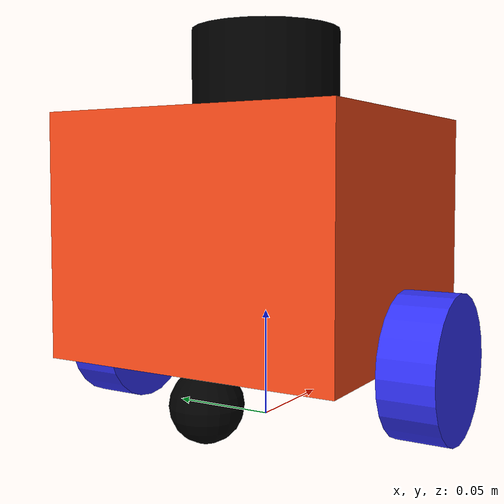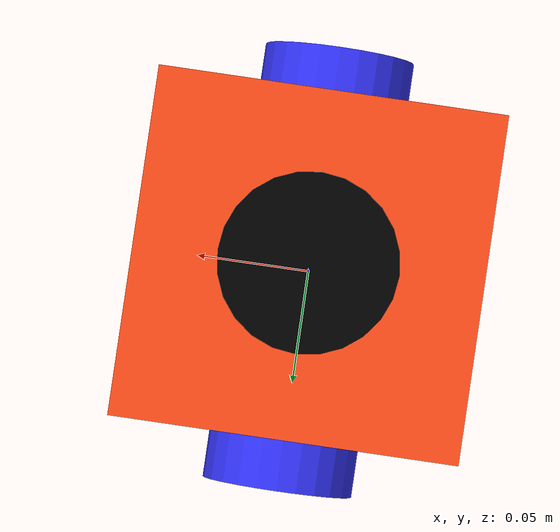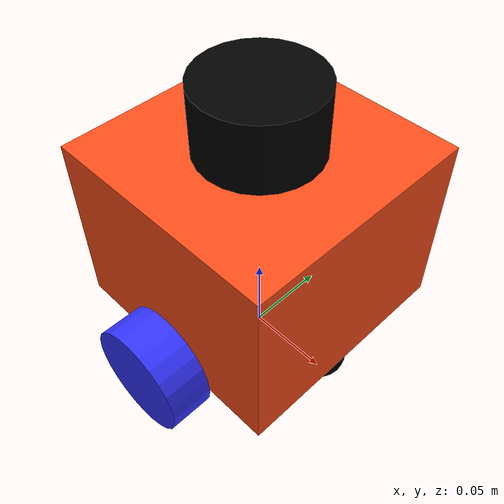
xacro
<?xml version="1.0"?>
<robot xmlns:xacro="http://www.ros.org/wiki/xacro"  name="robot">

    <xacro:arg name="is_sim" default="true"/>

    <xacro:include filename="dolly_core.xacro" />
    <xacro:include filename="dolly_gazebo.xacro" />
    <xacro:include filename="dolly_ros2_control.xacro" />
    <xacro:include filename="dolly_lidar.xacro" />
</robot>

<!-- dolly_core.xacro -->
<robot xmlns:xacro="http://www.ros.org/wiki/xacro" >

    <xacro:include filename="Inertial_macros.xacro"/>
    <xacro:property name="chassis_length" value=".14"/>
    <xacro:property name="chassis_width" value=".14"/>
    <xacro:property name="chassis_height" value="0.11"/>
    <xacro:property name="chassis_mass" value="0.2"/>

    <xacro:property name="wheel_radius" value="0.0325"/>
    <xacro:property name="wheel_thickness" value="0.025"/>
    <xacro:property name="wheel_mass" value="0.8"/>

    <xacro:property name="caster_radius" value="0.01625"/>
    <xacro:property name="caster_mass" value="0.0025"/>

    <material name="white">
        <color rgba="1 1 1 1" />
    </material>

    <material name="orange">
        <color rgba="1 0.3 0.1 1"/>
    </material>

    <material name="blue">
        <color rgba="0.2 0.2 1 1"/>
    </material>

    <material name="black">
        <color rgba="0 0 0 1"/>
    </material>

    <material name="red">
        <color rgba="1 0 0 1"/>
    </material>

 <!-- BASE LINK -->

    <link name="base_link"/>

 <!-- CHASSIS LINK -->

    <joint name="chassis_joint" type="fixed">
        <parent link="base_link"/>
        <child link="chassis"/>
        <origin xyz="0 0 ${wheel_radius}"/>
    </joint>

    <link name="chassis">
        <visual>
            <origin xyz="0 0 ${chassis_height/2}"/>
            <geometry>
                <box size="${chassis_length} ${chassis_width} ${chassis_height}"/>
            </geometry>
            <material name="orange"/>
        </visual>
        <collision>
            <origin xyz="0 0 ${chassis_height/2}"/>
            <geometry>
                <box size="${chassis_length} ${chassis_width} ${chassis_height}"/>
            </geometry>
        </collision>
        <xacro:inertial_box mass="0.5" x="${chassis_length}" y="${chassis_width}" z="${chassis_height}">
            <origin xyz="${chassis_length/2} 0 ${chassis_height/2}" rpy="0 0 0"/>
        </xacro:inertial_box>
    </link>

    <gazebo reference="chassis">
        <material>Gazebo/Orange</material>
    </gazebo>

    <transmission name="wheel_left_transmission">
        <plugin>transmission_interface/SimpleTransmission</plugin>
        <actuator name="wheel_left_motor" role="actuator_left"/>
        <joint name="left_wheel_joint" role="joint_left">
            <mechanical_reduction>1.0</mechanical_reduction>
        </joint>
    </transmission>
    <transmission name="wheel_right_transmission">
        <plugin>transmission_interface/SimpleTransmission</plugin>
        <actuator name="wheel_right_motor" role="actuator_right"/>
        <joint name="right_wheel_joint" role="joint_right">
            <mechanical_reduction>1.0</mechanical_reduction>
        </joint>
    </transmission>

   <!-- LEFT WHEEL LINK -->

    <joint name="left_wheel_joint" type="continuous">
        <parent link="chassis"/>
        <child link="left_wheel"/>
        <origin xyz="0 ${chassis_width/2.0} 0" rpy="0 0 0" />
        <axis xyz="0 1 0"/>
    </joint>

    <link name="left_wheel">
        <visual>
            <origin xyz="0 ${wheel_thickness/2.0}  0" rpy="-${pi/2} 0 0"/>
            <geometry>
                <cylinder radius="${wheel_radius}" length="${wheel_thickness}"/>
            </geometry>
            <material name="blue"/>
        </visual>
        <collision>
            <geometry>
                <sphere radius="${wheel_radius}"/>
            </geometry>
        </collision>
        <xacro:inertial_cylinder mass="${wheel_mass}" length="${wheel_thickness}" radius="${wheel_radius}">
            <origin xyz="0 0 0" rpy="0 0 0"/>
        </xacro:inertial_cylinder>
    </link>
    <gazebo reference="left_wheel">
        <material>Gazebo/Blue</material>
    </gazebo>
    <!-- RIGHT WHEEL LINK -->

    <joint name="right_wheel_joint" type="continuous">
        <parent link="chassis"/>
        <child link="right_wheel"/>
        <origin xyz="0 ${-chassis_width/2.0} 0" rpy="0 0 0" />
        <axis xyz="0 1 0"/>
    </joint>

    <link name="right_wheel">
        <visual>
            <origin xyz="0 ${-wheel_thickness/2.0} 0" rpy = "${pi/2} 0 0"/>
            <geometry>
                <cylinder radius="${wheel_radius}" length="${wheel_thickness}"/>
            </geometry>
            <material name="blue"/>
        </visual>
        <collision>
            <geometry>
                <sphere radius="${wheel_radius}"/>
            </geometry>
        </collision>
                <xacro:inertial_cylinder mass="${wheel_mass}" length="${wheel_thickness}" radius="${wheel_radius}">
            <origin xyz="0 0 0" rpy="0 0 0"/>
        </xacro:inertial_cylinder>
    </link>

    <gazebo reference="right_wheel">
        <material>Gazebo/Blue</material>
    </gazebo>

    <joint name="casterF_chasis_joint" type="fixed">
        <parent link="chassis"/>
        <child link="caster_wheel_front"/>
        <origin xyz="${chassis_length/2.0-0.02} 0 ${-caster_radius}" rpy="0 0 0" />
    </joint>

    <link name="caster_wheel_front">
        <visual>
            <origin xyz="0 0 0" rpy="0 0 0"/>
            <geometry>
                <sphere radius="${caster_radius}"/>
            </geometry>
            <material name="black"/>
        </visual>
        <collision>
            <geometry>
                <sphere radius="${caster_radius}"/>
            </geometry>
        </collision>
        <xacro:inertial_sphere mass="${caster_mass}" radius="${caster_radius}">
            <origin xyz="0 0 0" rpy="0 0 0"/>
        </xacro:inertial_sphere>
    </link>
    <gazebo reference="caster_wheel_front">
        <material>Gazebo/Blue</material>
    </gazebo>

    <joint name="casterR_chasis_joint" type="fixed">
        <parent link="chassis"/>
        <child link="caster_wheel_rear"/>
        <origin xyz="${0.02-chassis_length/2.0} 0 ${-caster_radius}" rpy="0 0 0" />
    </joint>

    <link name="caster_wheel_rear">
        <visual>
            <origin xyz="0 0 0" rpy="0 0 0"/>
            <geometry>
                <sphere radius="${caster_radius}"/>
            </geometry>
            <material name="black"/>
        </visual>
        <collision>
            <geometry>
                <sphere radius="${caster_radius}"/>
            </geometry>
        </collision>
        <xacro:inertial_sphere mass="${caster_mass}" radius="${caster_radius}">
            <origin xyz="0 0 0" rpy="0 0 0"/>
        </xacro:inertial_sphere>
    </link>
    <gazebo reference="caster_wheel_rear">
        <material>Gazebo/Blue</material>
    </gazebo>

</robot>

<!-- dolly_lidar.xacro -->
<robot xmlns:xacro="http://www.ros.org/wiki/xacro" >

    <joint name="laser_joint" type="fixed">
        <parent link="chassis"/>
        <child link="laser_frame"/>
        <origin xyz="0 0 0.11" rpy="0 0 0"/>
    </joint>

    <link name="laser_frame">
        <visual>
            <geometry>
                <cylinder radius="0.035" length="0.04"/>
            </geometry>
            <material name="black"/>
            <origin xyz="0 0 0.02"/>
        </visual>
        <collision>
            <geometry>
                <cylinder radius="0.05" length="0.04"/>
            </geometry>
        </collision>
        <xacro:inertial_cylinder mass="0.1" length="0.04" radius="0.05">
            <origin xyz="0 0 0" rpy="0 0 0"/>
        </xacro:inertial_cylinder>
    </link>

    <gazebo reference="laser_frame">
        <material>Gazebo/Black</material>

        <sensor name="laser" type="ray">
            <pose> 0 0 0 0 0 0 </pose>
            <visualize>false</visualize>
            <update_rate>10</update_rate>
            <ray>
                <scan>
                    <horizontal>
                        <samples>360</samples>
                        <resolution>1</resolution>
                        <min_angle>-3.14</min_angle>
                        <max_angle>3.14</max_angle>
                    </horizontal>
                </scan>
                <range>
                    <min>0.3</min>
                    <max>12</max>
                    <resolution>.01</resolution>
                </range>
            </ray>
            <plugin name="laser_controller" filename="libgazebo_ros_ray_sensor.so">
                <ros>
                    <argument>~/out:=scan</argument>
                </ros>
                <output_type>sensor_msgs/LaserScan</output_type>
                <frame_name>laser_frame</frame_name>
            </plugin>
        </sensor>
    </gazebo>

</robot>
